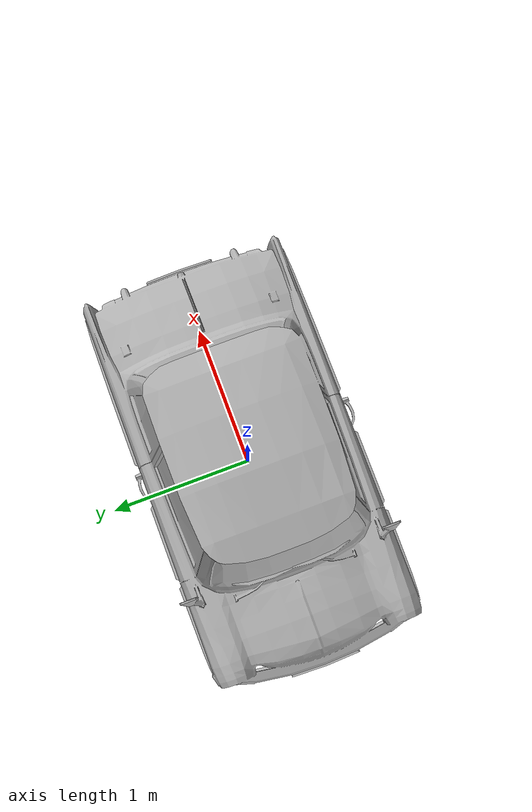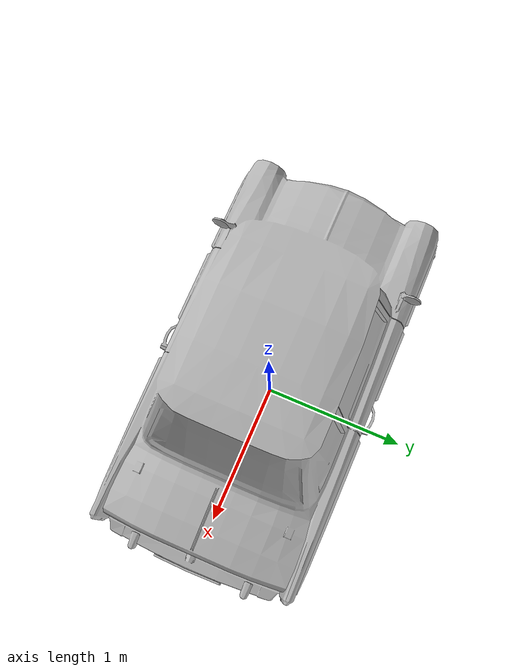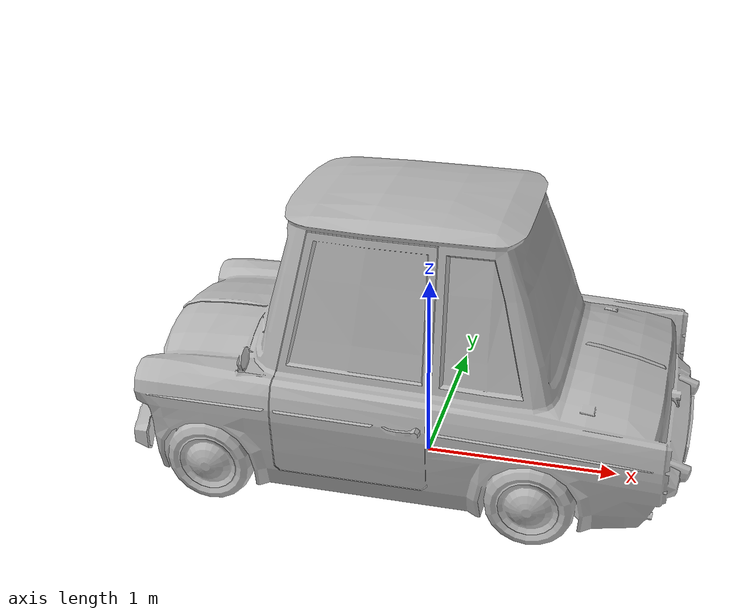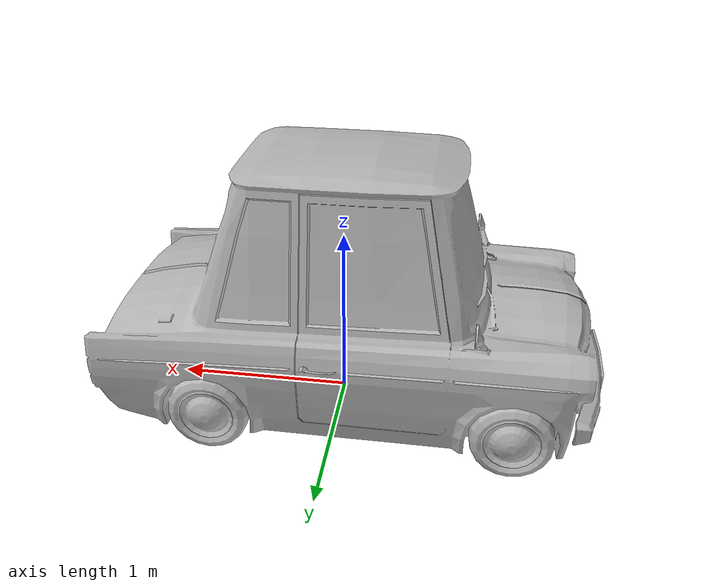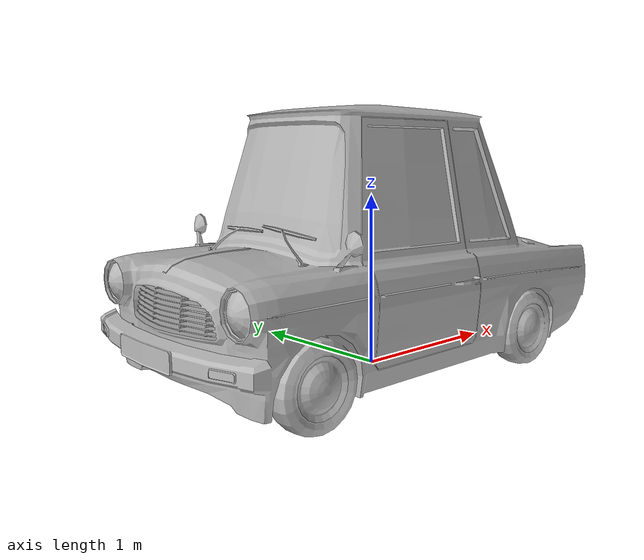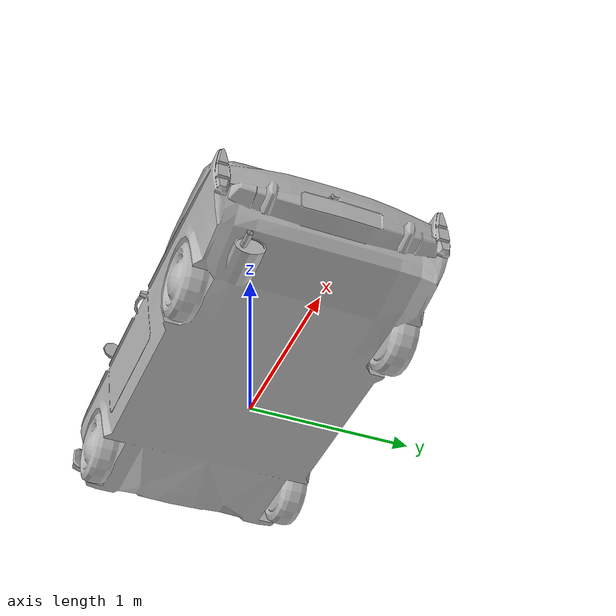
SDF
<?xml version='1.0'?>
<sdf version='1.6'>
  <model name='old_car'>
    <link name='link_1'>
      <visual name='visual'>
        <pose frame=''>0 0 0 0 -0 0</pose>
        <geometry>
          <mesh>
            <uri>model://old_car/meshes/old_car.dae</uri>
            <scale>1.0 1.0 1.0</scale>
          </mesh>
        </geometry>
        <cast_shadows>0</cast_shadows>
        <transparency>0</transparency>
      </visual>
      <collision name='collision'>
        <laser_retro>0</laser_retro>
        <max_contacts>10</max_contacts>
        <pose frame=''>0 0 0 0 -0 0</pose>
        <geometry>
          <mesh>
            <uri>model://old_car/meshes/old_car.stl</uri>
            <scale>1.0 1.0 1.0</scale>
          </mesh>
        </geometry>
     </collision>
    </link>

    <static>1</static>
    <allow_auto_disable>1</allow_auto_disable>
  </model>
</sdf>
